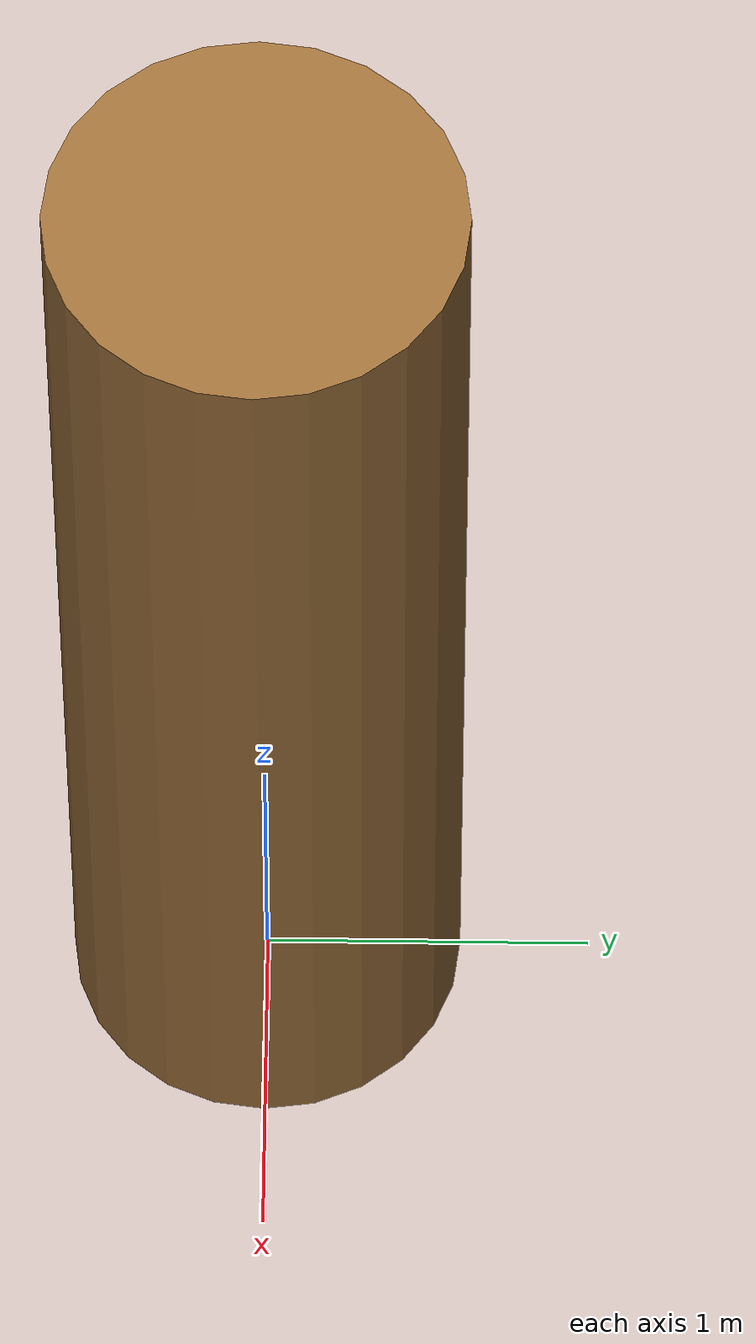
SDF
<?xml version="1.0"?>
<sdf version="1.6">
  <model name="pillar">
    <static>true</static>
    <link name="pillar_link">
      <collision name="pillar_collision">
        <pose>0 0 2.0 0 0 0</pose>
        <geometry>
          <cylinder>
            <radius>0.60</radius>
            <length>4.0</length>
          </cylinder>
        </geometry>
        <surface>
          <contact>
            <collide_without_contact>true</collide_without_contact>
          </contact>
        </surface>
      </collision>
      <visual name="pillar_visual">
        <pose>0 0 2.0 0 0 0</pose>
        <geometry>
          <cylinder>
            <radius>0.60</radius>
            <length>4.0</length>
          </cylinder>
        </geometry>
        <material>
          <ambient>0.42 0.30 0.16 1</ambient>
          <diffuse>0.62 0.44 0.23 1</diffuse>
          <specular>0.02 0.02 0.02 1</specular>
        </material>
      </visual>
    </link>
  </model>
</sdf>
